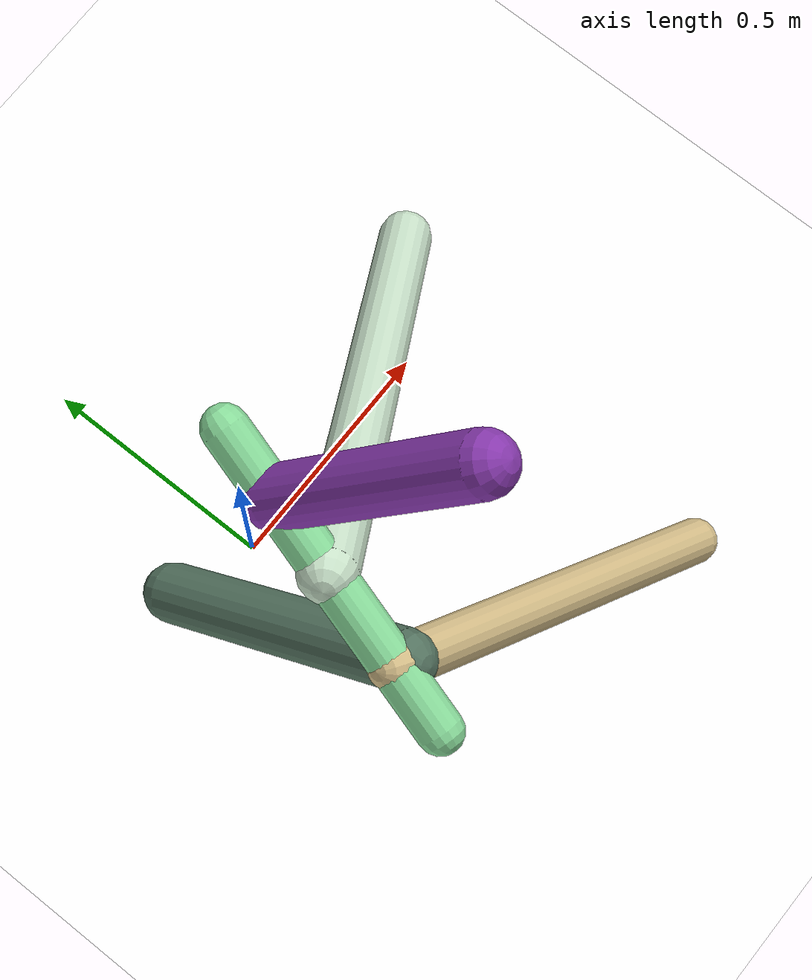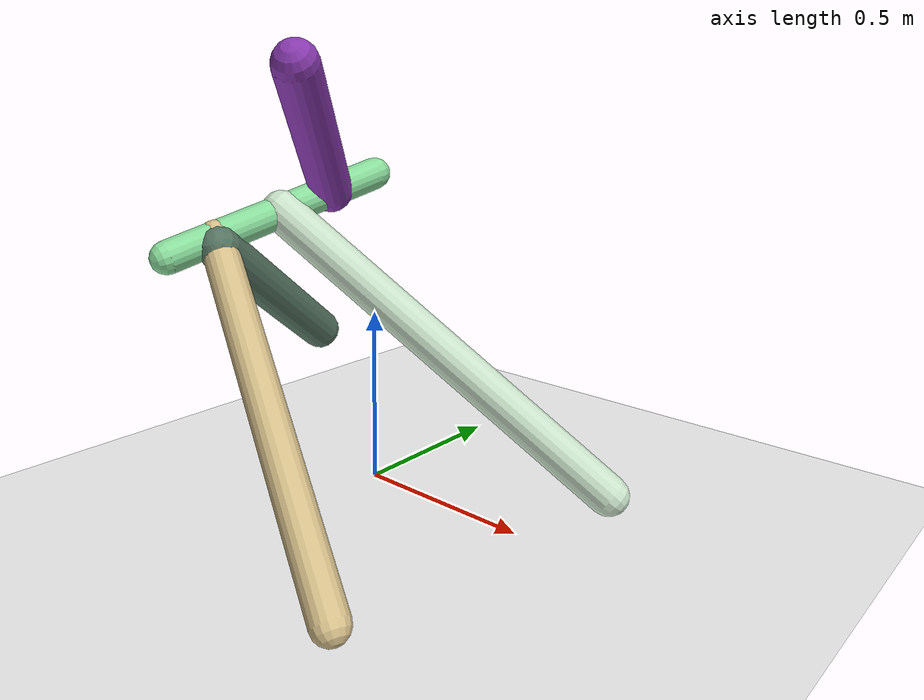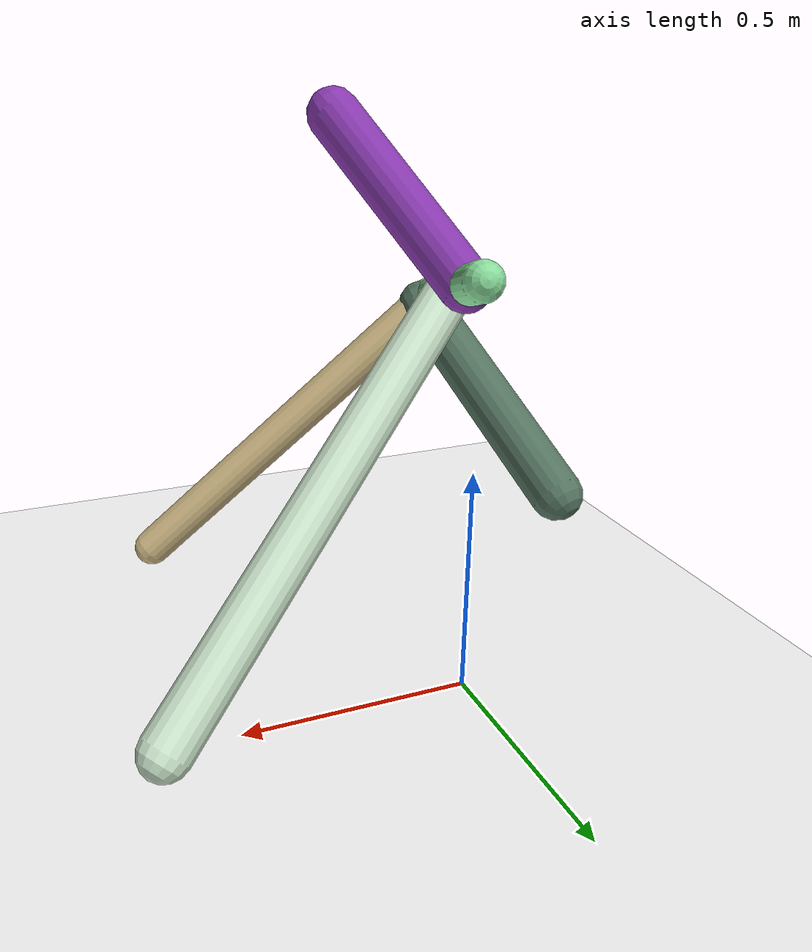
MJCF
<mujoco model="morphology">
  <option timestep="0.01"/>
  <default>
    <default class="/"/>
    <default class="0/"/>
    <default class="0/1/"/>
    <default class="0/2/"/>
    <default class="0/2/3/"/>
    <default class="0/4/"/>
  </default>
  <asset>
    <texture name="texplane" type="2d" builtin="checker" rgb1="0.10000000000000001 0.20000000000000001 0.29999999999999999" rgb2="0.20000000000000001 0.29999999999999999 0.40000000000000002" width="300" height="300"/>
    <material name="MatPlane" class="/" texture="texplane" texrepeat="20 20" specular="1" shininess="1" reflectance="0.5"/>
  </asset>
  <worldbody>
    <light name="//unnamed_light_0" class="/" directional="true" pos="0 0 1.5" dir="0 0 -1.3" cutoff="100" exponent="1" diffuse="1 1 1" specular="0.10000000000000001 0.10000000000000001 0.10000000000000001"/>
    <geom name="ground" class="/" type="plane" size="15 15 0.5" material="MatPlane" rgba="1 1 1 1"/>
    <site name="body" class="/" size="9.9999999999999995e-07 9.9999999999999995e-07 9.9999999999999995e-07" pos="0 0 0.89136073589324949"/>
    <body pos="0 0 0.89136073589324949" name="0/">
      <freejoint name="0/"/>
      <geom name="0/geom" class="0/" type="capsule" contype="1" conaffinity="1" condim="3" size="0.04256601216110395" rgba="0.53950646774564825 0.86254871344026296 0.6080514269133801 1" friction="0.59999999999999998 0.10000000000000001 0.10000000000000001" fromto="0 0 0 -0.14801576258814464 -0.56940228471119125 -0.16840136581684773"/>
      <site name="0/end0" class="0/" size="0.0050000000000000001" pos="-0.14801576258814464 -0.56940228471119125 -0.16840136581684773"/>
      <site name="0/attach1" class="0/" size="9.9999999999999995e-07 9.9999999999999995e-07 9.9999999999999995e-07" pos="-0.070211728433384954 -0.27009771043596414 -0.079881701501233596"/>
      <body pos="-0.070211728433384954 -0.27009771043596414 -0.079881701501233596" name="0/1/">
        <joint name="0/1/joint/" class="0/" type="hinge" axis="0 1 0" limited="true" range="-64.616524388936455 64.616524388936455"/>
        <geom name="0/1/geom" class="0/1/" type="capsule" contype="1" conaffinity="1" condim="3" size="0.054126733210347749" rgba="0.79033459572757925 0.88804944407163267 0.79149886454554386 1" friction="0.59999999999999998 0.10000000000000001 0.10000000000000001" fromto="0 0 0 0.7493083679382444 0.41703197979773465 -0.69381121495491493"/>
        <site name="0/1/end1" class="0/1/" size="0.0050000000000000001" pos="0.7493083679382444 0.41703197979773465 -0.69381121495491493"/>
      </body>
      <site name="0/attach2" class="0/" size="9.9999999999999995e-07 9.9999999999999995e-07 9.9999999999999995e-07" pos="-0.11567027417514099 -0.44497232752000487 -0.13160106609526173"/>
      <body pos="-0.11567027417514099 -0.44497232752000487 -0.13160106609526173" name="0/2/">
        <joint name="0/2/joint/" class="0/" type="hinge" axis="0 1 0" limited="true" range="-52.687984357339957 52.687984357339957"/>
        <geom name="0/2/geom" class="0/2/" type="capsule" contype="1" conaffinity="1" condim="3" size="0.045588483758489208" rgba="0.83656184204346251 0.74615430400895622 0.53881747406896496 1" friction="0.59999999999999998 0.10000000000000001 0.10000000000000001" fromto="0 0 0 0.65632992424179237 -0.24532050095676949 -0.65975965574710838"/>
        <site name="0/2/end2" class="0/2/" size="0.0050000000000000001" pos="0.65632992424179237 -0.24532050095676949 -0.65975965574710838"/>
        <site name="0/2/attach3" class="0/2/" size="9.9999999999999995e-07 9.9999999999999995e-07 9.9999999999999995e-07" pos="0.021753290317204931 -0.0081308620572795587 -0.021866964770234622"/>
        <body pos="0.021753290317204931 -0.0081308620572795587 -0.021866964770234622" name="0/2/3/">
          <geom name="0/2/3/geom" class="0/2/3/" type="capsule" contype="1" conaffinity="1" condim="3" size="0.056042295563177247" rgba="0.32926052585921095 0.4502984485815571 0.37490744995057801 1" friction="0.59999999999999998 0.10000000000000001 0.10000000000000001" fromto="0 0 0 -0.11814346777078133 0.43670275637184064 -0.32497370348580917"/>
          <site name="0/2/3/end3" class="0/2/3/" size="0.0050000000000000001" pos="-0.11814346777078133 0.43670275637184064 -0.32497370348580917"/>
        </body>
      </body>
      <site name="0/attach4" class="0/" size="9.9999999999999995e-07 9.9999999999999995e-07 9.9999999999999995e-07" pos="-0.033679470079008983 -0.12956165529620373 -0.038318005205122956"/>
      <body pos="-0.033679470079008983 -0.12956165529620373 -0.038318005205122956" name="0/4/">
        <joint name="0/4/joint/" class="0/" type="hinge" axis="0 0 1" limited="true" range="-30.525451529041785 30.525451529041785"/>
        <geom name="0/4/geom" class="0/4/" type="capsule" contype="1" conaffinity="1" condim="3" size="0.056720336215605627" rgba="0.53147930280002076 0.22217499006717389 0.68264624026404852 1" friction="0.59999999999999998 0.10000000000000001 0.10000000000000001" fromto="0 0 0 0.18251353979710716 -0.27277866789652561 0.31972113877223496"/>
        <site name="0/4/end4" class="0/4/" size="0.0050000000000000001" pos="0.18251353979710716 -0.27277866789652561 0.31972113877223496"/>
      </body>
      <camera name="0/iso" class="0/" mode="trackcom" pos="-2.2999999999999998 -2.2999999999999998 1" xyaxes="0.45000000000000001 -0.45000000000000001 0 0.29999999999999999 0.14999999999999999 0.93999999999999995"/>
    </body>
  </worldbody>
  <actuator>
    <motor name="0/1/motor" class="0/1/" ctrllimited="true" ctrlrange="-1 1" gear="62" joint="0/1/joint/"/>
    <motor name="0/2/motor" class="0/2/" ctrllimited="true" ctrlrange="-1 1" gear="52" joint="0/2/joint/"/>
    <motor name="0/4/motor" class="0/4/" ctrllimited="true" ctrlrange="-1 1" gear="94" joint="0/4/joint/"/>
  </actuator>
  <sensor>
    <subtreelinvel name="velocity" body="0/"/>
  </sensor>
</mujoco>
